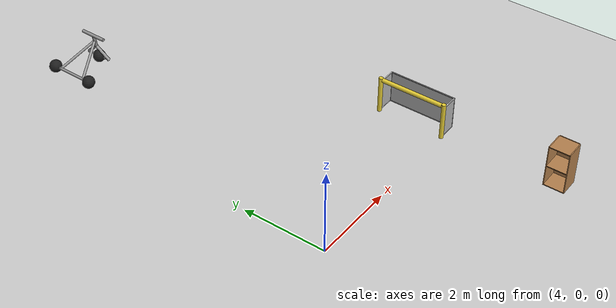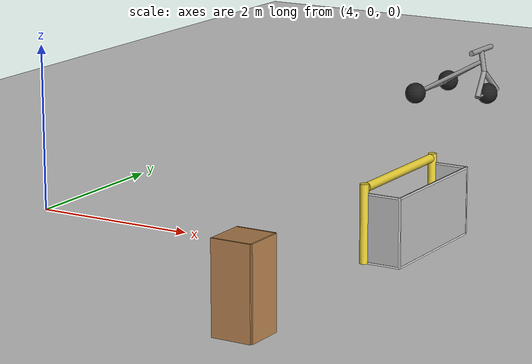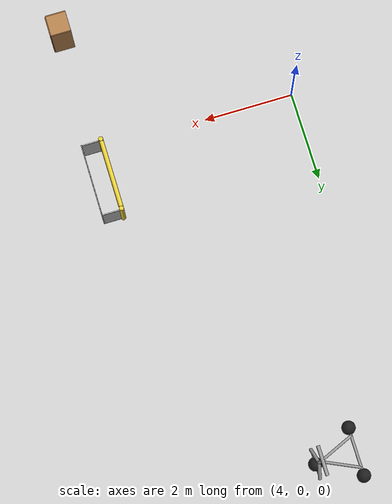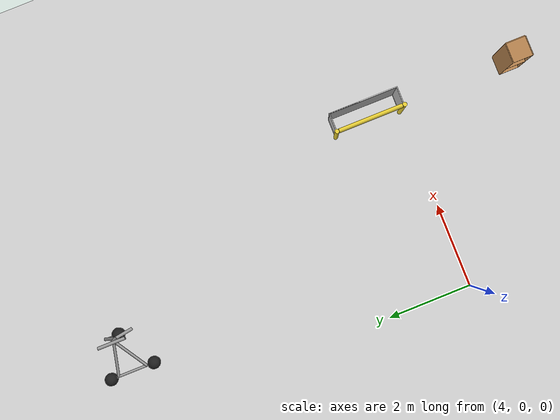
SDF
<sdf version="1.7">
 <world name="default">
  <model name="ground_plane">
   <static>1</static>
   <link name="link">
    <collision name="collision">
     <geometry><plane><normal>0 0 1</normal><size>100 100</size></plane></geometry>
     <surface><friction><ode><mu>100</mu><mu2>50</mu2></ode></friction></surface>
    </collision>
    <visual name="visual">
     <cast_shadows>0</cast_shadows>
     <geometry><plane><normal>0 0 1</normal><size>100 100</size></plane></geometry>
     <material>
      <script><uri>file://media/materials/scripts/gazebo.material</uri><name>Gazebo/Grey</name></script>
     </material>
    </visual>
   </link>
  </model>
  <model name="trisphere_cycle">
   <link name="frame">
    <pose>-0.408559 0 0.385023 0 -0.522021 0</pose>
    <inertial>
     <mass>10</mass>
     <inertia><ixx>0.228</ixx><iyy>0.743521</iyy><izz>0.965521</izz><ixy>0</ixy><ixz>0</ixz><iyz>0</iyz></inertia>
    </inertial>
    <collision name="axle_collision">
     <pose>-0.471335 0 0 1.5708 -0 0</pose>
     <geometry><cylinder><length>1.03923</length><radius>0.03</radius></cylinder></geometry>
    </collision>
    <visual name="axle_visual">
     <pose>-0.471335 0 0 1.5708 -0 0</pose>
     <geometry><cylinder><length>1.03923</length><radius>0.03</radius></cylinder></geometry>
     <material>
      <script><uri>file://media/materials/scripts/gazebo.material</uri><name>Gazebo/Grey</name></script>
     </material>
    </visual>
    <collision name="frame_left_collision">
     <pose>0 0.171552 0 -2.79253 1.57079 3.14159</pose>
     <geometry><cylinder><length>1.00317</length><radius>0.03</radius></cylinder></geometry>
    </collision>
    <visual name="frame_left_visual">
     <pose>0 0.171552 0 -2.79253 1.57079 3.14159</pose>
     <geometry><cylinder><length>1.00317</length><radius>0.03</radius></cylinder></geometry>
     <material>
      <script><uri>file://media/materials/scripts/gazebo.material</uri><name>Gazebo/Grey</name></script>
     </material>
    </visual>
    <collision name="frame_right_collision">
     <pose>0 -0.171552 0 2.79253 1.57079 -3.14159</pose>
     <geometry><cylinder><length>1.00317</length><radius>0.03</radius></cylinder></geometry>
    </collision>
    <visual name="frame_right_visual">
     <pose>0 -0.171552 0 2.79253 1.57079 -3.14159</pose>
     <geometry><cylinder><length>1.00317</length><radius>0.03</radius></cylinder></geometry>
     <material>
      <script><uri>file://media/materials/scripts/gazebo.material</uri><name>Gazebo/Grey</name></script>
     </material>
    </visual>
   </link>
   <link name="fork">
    <pose>0.041441 0 0.385023 0 -0.174533 0</pose>
    <inertial>
     <mass>3</mass>
     <inertia>
      <ixx>0.158203</ixx>
      <iyy>0.0583594</iyy>
      <izz>0.102656</izz>
      <ixy>0</ixy>
      <ixz>0</ixz>
      <iyz>0</iyz>
     </inertia>
    </inertial>
    <collision name="handlebars_collision">
     <pose>0 0 0.397748 1.5708 -0 0</pose>
     <geometry><cylinder><length>0.636396</length><radius>0.0375</radius></cylinder></geometry>
    </collision>
    <visual name="handlebars_visual">
     <pose>0 0 0.397748 1.5708 -0 0</pose>
     <geometry><cylinder><length>0.636396</length><radius>0.0375</radius></cylinder></geometry>
     <material>
      <script><uri>file://media/materials/scripts/gazebo.material</uri><name>Gazebo/Grey</name></script>
     </material>
    </visual>
    <collision name="headtube_collision">
     <pose>0 0 0.238649 0 -0 0</pose>
     <geometry><cylinder><length>0.318198</length><radius>0.0375</radius></cylinder></geometry>
    </collision>
    <visual name="headtube_visual">
     <pose>0 0 0.238649 0 -0 0</pose>
     <geometry><cylinder><length>0.318198</length><radius>0.0375</radius></cylinder></geometry>
     <material>
      <script><uri>file://media/materials/scripts/gazebo.material</uri><name>Gazebo/Grey</name></script>
     </material>
    </visual>
    <collision name="spindle_collision">
     <pose>0 0 -0.238649 1.5708 -0 0</pose>
     <geometry><cylinder><length>0.636396</length><radius>0.015</radius></cylinder></geometry>
    </collision>
    <visual name="spindle_visual">
     <pose>0 0 -0.238649 1.5708 -0 0</pose>
     <geometry><cylinder><length>0.636396</length><radius>0.015</radius></cylinder></geometry>
     <material>
      <script><uri>file://media/materials/scripts/gazebo.material</uri><name>Gazebo/Grey</name></script>
     </material>
    </visual>
    <collision name="fork_left_collision">
     <pose>0 0.159099 -0.07955 0.785398 -0 0</pose>
     <geometry><cylinder><length>0.45</length><radius>0.0375</radius></cylinder></geometry>
    </collision>
    <visual name="fork_left_visual">
     <pose>0 0.159099 -0.07955 0.785398 -0 0</pose>
     <geometry><cylinder><length>0.45</length><radius>0.0375</radius></cylinder></geometry>
     <material>
      <script><uri>file://media/materials/scripts/gazebo.material</uri><name>Gazebo/Grey</name></script>
     </material>
    </visual>
    <collision name="fork_right_collision">
     <pose>0 -0.159099 -0.07955 -0.785398 0 0</pose>
     <geometry><cylinder><length>0.45</length><radius>0.0375</radius></cylinder></geometry>
    </collision>
    <visual name="fork_right_visual">
     <pose>0 -0.159099 -0.07955 -0.785398 0 0</pose>
     <geometry><cylinder><length>0.45</length><radius>0.0375</radius></cylinder></geometry>
     <material>
      <script><uri>file://media/materials/scripts/gazebo.material</uri><name>Gazebo/Grey</name></script>
     </material>
    </visual>
   </link>
   <link name="wheel_front">
    <pose>0.082882 0 0.15 0 -0 0</pose>
    <inertial>
     <mass>0.5</mass>
     <inertia><ixx>0.0045</ixx><iyy>0.0045</iyy><izz>0.0045</izz><ixy>0</ixy><ixz>0</ixz><iyz>0</iyz></inertia>
    </inertial>
    <collision name="collision">
     <geometry><sphere><radius>0.15</radius></sphere></geometry>
     <surface><contact><ode><kp>1e+08</kp><kd>1</kd><min_depth>0.0005</min_depth></ode></contact></surface>
    </collision>
    <visual name="visual">
     <geometry><sphere><radius>0.15</radius></sphere></geometry>
     <material>
      <script><uri>file://media/materials/scripts/gazebo.material</uri><name>Gazebo/Black</name></script>
     </material>
    </visual>
   </link>
   <joint name="wheel_front_steer" type="revolute">
    <parent>frame</parent>
    <child>fork</child>
    <axis>
     <xyz>0 0 1</xyz>
     <limit><lower>-0.959931</lower><upper>0.959931</upper></limit>
     <dynamics><spring_reference>0</spring_reference><spring_stiffness>0</spring_stiffness></dynamics>
    </axis>
   </joint>
   <joint name="wheel_front_spin" type="revolute">
    <parent>fork</parent>
    <child>wheel_front</child>
    <axis>
     <xyz>0 1 0</xyz>
     <limit><lower>-1e+16</lower><upper>1e+16</upper></limit>
     <dynamics><spring_reference>0</spring_reference><spring_stiffness>0</spring_stiffness></dynamics>
    </axis>
   </joint>
   <link name="wheel_rear_left">
    <pose>-0.817118 0.519615 0.15 0 -0 0</pose>
    <inertial>
     <mass>0.5</mass>
     <inertia><ixx>0.0045</ixx><iyy>0.0045</iyy><izz>0.0045</izz><ixy>0</ixy><ixz>0</ixz><iyz>0</iyz></inertia>
    </inertial>
    <collision name="collision">
     <geometry><sphere><radius>0.15</radius></sphere></geometry>
     <surface><contact><ode><kp>1e+08</kp><kd>1</kd><min_depth>0.0005</min_depth></ode></contact></surface>
    </collision>
    <visual name="visual">
     <geometry><sphere><radius>0.15</radius></sphere></geometry>
     <material>
      <script><uri>file://media/materials/scripts/gazebo.material</uri><name>Gazebo/Black</name></script>
     </material>
    </visual>
   </link>
   <joint name="wheel_rear_left_spin" type="revolute">
    <parent>frame</parent>
    <child>wheel_rear_left</child>
    <axis>
     <xyz>0 1 0</xyz>
     <limit><lower>-1e+16</lower><upper>1e+16</upper></limit>
     <dynamics><spring_reference>0</spring_reference><spring_stiffness>0</spring_stiffness></dynamics>
    </axis>
   </joint>
   <link name="wheel_rear_right">
    <pose>-0.817118 -0.519615 0.15 0 -0 0</pose>
    <inertial>
     <mass>0.5</mass>
     <inertia><ixx>0.0045</ixx><iyy>0.0045</iyy><izz>0.0045</izz><ixy>0</ixy><ixz>0</ixz><iyz>0</iyz></inertia>
    </inertial>
    <collision name="collision">
     <geometry><sphere><radius>0.15</radius></sphere></geometry>
     <surface><contact><ode><kp>1e+08</kp><kd>1</kd><min_depth>0.0005</min_depth></ode></contact></surface>
    </collision>
    <visual name="visual">
     <geometry><sphere><radius>0.15</radius></sphere></geometry>
     <material>
      <script><uri>file://media/materials/scripts/gazebo.material</uri><name>Gazebo/Black</name></script>
     </material>
    </visual>
   </link>
   <joint name="wheel_rear_right_spin" type="revolute">
    <parent>frame</parent>
    <child>wheel_rear_right</child>
    <axis>
     <xyz>0 1 0</xyz>
     <limit><lower>-1e+16</lower><upper>1e+16</upper></limit>
     <dynamics><spring_reference>0</spring_reference><spring_stiffness>0</spring_stiffness></dynamics>
    </axis>
   </joint>
   <pose>5.90847 7.89246 0.009499 -0 1e-06 -0.001227</pose>
  </model>
  <model name="RoboCup 2014 SPL Goal">
   <static>1</static>
   <link name="left_post">
    <pose>0 0.8 0.45 0 -0 0</pose>
    <collision name="collision">
     <geometry><cylinder><radius>0.05</radius><length>0.9</length></cylinder></geometry>
    </collision>
    <visual name="visual">
     <geometry><cylinder><radius>0.05</radius><length>0.9</length></cylinder></geometry>
     <material>
      <script><uri>file://media/materials/scripts/gazebo.material</uri><name>Gazebo/ZincYellow</name></script>
     </material>
    </visual>
   </link>
   <link name="left_support_horiz_lower">
    <pose>0.24 0.8 0.01 0 -0 0</pose>
    <collision name="collision"><geometry><box><size>0.38 0.02 0.02</size></box></geometry></collision>
    <visual name="visual">
     <geometry><box><size>0.38 0.02 0.02</size></box></geometry>
     <material>
      <script><uri>file://media/materials/scripts/gazebo.material</uri><name>Gazebo/White</name></script>
     </material>
    </visual>
   </link>
   <link name="left_support_horiz_upper">
    <pose>0.24 0.8 0.79 0 -0 0</pose>
    <collision name="collision"><geometry><box><size>0.38 0.02 0.02</size></box></geometry></collision>
    <visual name="visual">
     <geometry><box><size>0.38 0.02 0.02</size></box></geometry>
     <material>
      <script><uri>file://media/materials/scripts/gazebo.material</uri><name>Gazebo/White</name></script>
     </material>
    </visual>
   </link>
   <link name="left_support_vertical">
    <pose>0.44 0.8 0.4 3.14159 1.57079 3.14159</pose>
    <collision name="collision"><geometry><box><size>0.8 0.02 0.02</size></box></geometry></collision>
    <visual name="visual">
     <geometry><box><size>0.8 0.02 0.02</size></box></geometry>
     <material>
      <script><uri>file://media/materials/scripts/gazebo.material</uri><name>Gazebo/White</name></script>
     </material>
    </visual>
   </link>
   <link name="right_support_horiz_lower">
    <pose>0.24 -0.8 0.01 0 -0 0</pose>
    <collision name="collision"><geometry><box><size>0.38 0.02 0.02</size></box></geometry></collision>
    <visual name="visual">
     <geometry><box><size>0.38 0.02 0.02</size></box></geometry>
     <material>
      <script><uri>file://media/materials/scripts/gazebo.material</uri><name>Gazebo/White</name></script>
     </material>
    </visual>
   </link>
   <link name="right_support_horiz_upper">
    <pose>0.24 -0.8 0.79 0 -0 0</pose>
    <collision name="collision"><geometry><box><size>0.38 0.02 0.02</size></box></geometry></collision>
    <visual name="visual">
     <geometry><box><size>0.38 0.02 0.02</size></box></geometry>
     <material>
      <script><uri>file://media/materials/scripts/gazebo.material</uri><name>Gazebo/White</name></script>
     </material>
    </visual>
   </link>
   <link name="right_support_vertical">
    <pose>0.44 -0.8 0.4 3.14159 1.57079 3.14159</pose>
    <collision name="collision"><geometry><box><size>0.8 0.02 0.02</size></box></geometry></collision>
    <visual name="visual">
     <geometry><box><size>0.8 0.02 0.02</size></box></geometry>
     <material>
      <script><uri>file://media/materials/scripts/gazebo.material</uri><name>Gazebo/White</name></script>
     </material>
    </visual>
   </link>
   <link name="center_support_horiz_lower">
    <pose>0.44 0 0.01 3.14159 1.57079 3.14159</pose>
    <collision name="collision"><geometry><box><size>0.02 1.58 0.02</size></box></geometry></collision>
    <visual name="visual">
     <geometry><box><size>0.02 1.58 0.02</size></box></geometry>
     <material>
      <script><uri>file://media/materials/scripts/gazebo.material</uri><name>Gazebo/White</name></script>
     </material>
    </visual>
   </link>
   <link name="center_support_horiz_upper">
    <pose>0.44 0 0.79 3.14159 1.57079 3.14159</pose>
    <collision name="collision"><geometry><box><size>0.02 1.58 0.02</size></box></geometry></collision>
    <visual name="visual">
     <geometry><box><size>0.02 1.58 0.02</size></box></geometry>
     <material>
      <script><uri>file://media/materials/scripts/gazebo.material</uri><name>Gazebo/White</name></script>
     </material>
    </visual>
   </link>
   <link name="right_post">
    <pose>0 -0.8 0.45 0 -0 0</pose>
    <collision name="collision">
     <geometry><cylinder><radius>0.05</radius><length>0.9</length></cylinder></geometry>
    </collision>
    <visual name="visual">
     <geometry><cylinder><radius>0.05</radius><length>0.9</length></cylinder></geometry>
     <material>
      <script><uri>file://media/materials/scripts/gazebo.material</uri><name>Gazebo/ZincYellow</name></script>
     </material>
    </visual>
   </link>
   <link name="crossbar">
    <pose>0 0 0.85 1.57 1.57 0</pose>
    <collision name="collision">
     <geometry><cylinder><radius>0.05</radius><length>1.5</length></cylinder></geometry>
    </collision>
    <visual name="visual">
     <geometry><cylinder><radius>0.05</radius><length>1.5</length></cylinder></geometry>
     <material>
      <script><uri>file://media/materials/scripts/gazebo.material</uri><name>Gazebo/ZincYellow</name></script>
     </material>
    </visual>
   </link>
   <link name="center_net">
    <pose>0.44 0 0.4 0 -0 0</pose>
    <collision name="collision"><geometry><box><size>0.01 1.6 0.8</size></box></geometry></collision>
    <visual name="visual">
     <geometry><box><size>0.01 1.6 0.8</size></box></geometry>
     <material>
      <script>
       <uri>model://robocup09_spl_field/materials/scripts/</uri>
       <uri>model://robocup09_spl_field/materials/textures/</uri>
       <name>RoboCup/Net</name>
      </script>
     </material>
    </visual>
   </link>
   <link name="left_net">
    <pose>0.24 0.8 0.4 0 -0 0</pose>
    <collision name="collision"><geometry><box><size>0.38 0.01 0.76</size></box></geometry></collision>
    <visual name="visual">
     <geometry><box><size>0.38 0.01 0.76</size></box></geometry>
     <material>
      <script>
       <uri>model://robocup09_spl_field/materials/scripts/</uri>
       <uri>model://robocup09_spl_field/materials/textures/</uri>
       <name>RoboCup/Net</name>
      </script>
     </material>
    </visual>
   </link>
   <link name="right_net">
    <pose>0.24 -0.8 0.4 0 -0 0</pose>
    <collision name="collision"><geometry><box><size>0.38 0.01 0.76</size></box></geometry></collision>
    <visual name="visual">
     <geometry><box><size>0.38 0.01 0.76</size></box></geometry>
     <material>
      <script>
       <uri>model://robocup09_spl_field/materials/scripts/</uri>
       <uri>model://robocup09_spl_field/materials/textures/</uri>
       <name>RoboCup/Net</name>
      </script>
     </material>
    </visual>
   </link>
   <pose>8.34229 0.80226 0 0 -0 0</pose>
  </model>
  <model name="cabinet_0">
   <static>1</static>
   <link name="cabinet_bottom_plate">
    <inertial>
     <pose>0 0 -1 0 -0 0</pose>
     <inertia><ixx>2.05</ixx><ixy>0</ixy><ixz>0</ixz><iyy>2.05</iyy><iyz>0</iyz><izz>2.05</izz></inertia>
     <mass>25</mass>
    </inertial>
    <collision name="cabinet_bottom_plate_geom">
     <pose>0 0 0.01 0 -0 0</pose>
     <geometry><box><size>0.45 0.45 0.02</size></box></geometry>
    </collision>
    <visual name="cabinet_bottom_plate_geom_visual">
     <pose>0 0 0.01 0 -0 0</pose>
     <geometry><box><size>0.45 0.45 0.02</size></box></geometry>
     <material>
      <script><uri>file://media/materials/scripts/gazebo.material</uri><name>Gazebo/Wood</name></script>
     </material>
    </visual>
    <collision name="cabinet_bottom_plate_geom_cabinet_back_plate">
     <pose>0.235 0 0.51 0 -0 0</pose>
     <geometry><box><size>0.02 0.45 1.02</size></box></geometry>
    </collision>
    <visual name="cabinet_bottom_plate_geom_cabinet_back_plate_visual">
     <pose>0.235 0 0.51 0 -0 0</pose>
     <geometry><box><size>0.02 0.45 1.02</size></box></geometry>
     <material>
      <script><uri>file://media/materials/scripts/gazebo.material</uri><name>Gazebo/Wood</name></script>
     </material>
    </visual>
    <collision name="cabinet_bottom_plate_geom_cabinet_left_plate">
     <pose>0 0.235 0.51 0 -0 0</pose>
     <geometry><box><size>0.45 0.02 1.02</size></box></geometry>
    </collision>
    <visual name="cabinet_bottom_plate_geom_cabinet_left_plate_visual">
     <pose>0 0.235 0.51 0 -0 0</pose>
     <geometry><box><size>0.45 0.02 1.02</size></box></geometry>
     <material>
      <script><uri>file://media/materials/scripts/gazebo.material</uri><name>Gazebo/Wood</name></script>
     </material>
    </visual>
    <collision name="cabinet_bottom_plate_geom_cabinet_middle_plate">
     <pose>0 0 0.51 0 -0 0</pose>
     <geometry><box><size>0.45 0.45 0.02</size></box></geometry>
    </collision>
    <visual name="cabinet_bottom_plate_geom_cabinet_middle_plate_visual">
     <pose>0 0 0.51 0 -0 0</pose>
     <geometry><box><size>0.45 0.45 0.02</size></box></geometry>
     <material>
      <script><uri>file://media/materials/scripts/gazebo.material</uri><name>Gazebo/Wood</name></script>
     </material>
    </visual>
    <collision name="cabinet_bottom_plate_geom_cabinet_right_plate">
     <pose>0 -0.235 0.51 0 -0 0</pose>
     <geometry><box><size>0.45 0.02 1.02</size></box></geometry>
    </collision>
    <visual name="cabinet_bottom_plate_geom_cabinet_right_plate_visual">
     <pose>0 -0.235 0.51 0 -0 0</pose>
     <geometry><box><size>0.45 0.02 1.02</size></box></geometry>
     <material>
      <script><uri>file://media/materials/scripts/gazebo.material</uri><name>Gazebo/Wood</name></script>
     </material>
    </visual>
    <collision name="cabinet_bottom_plate_geom_cabinet_top_plate">
     <pose>0 0 1.01 0 -0 0</pose>
     <geometry><box><size>0.45 0.45 0.02</size></box></geometry>
    </collision>
    <visual name="cabinet_bottom_plate_geom_cabinet_top_plate_visual">
     <pose>0 0 1.01 0 -0 0</pose>
     <geometry><box><size>0.45 0.45 0.02</size></box></geometry>
     <material>
      <script><uri>file://media/materials/scripts/gazebo.material</uri><name>Gazebo/Wood</name></script>
     </material>
    </visual>
   </link>
   <pose>8.50936 -2.73171 0 0 -0 0</pose>
  </model>
 </world>
</sdf>
